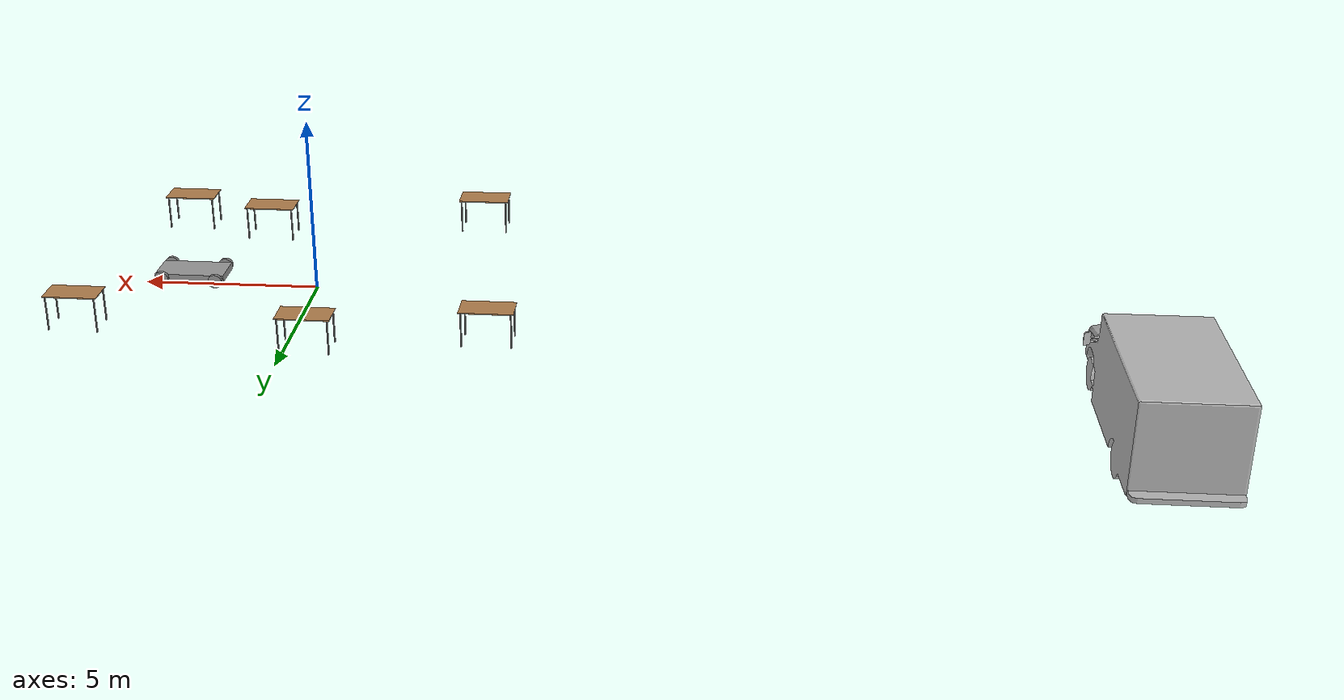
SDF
<?xml version='1.0'?>
<sdf version='1.6'>
  <model name='robot'>
    <link name='link_4'>
      <pose frame=''>3.79287 -0.599271 0.116667 0 -0 0</pose>
      <inertial>
        <mass>1</mass>
        <inertia>
          <ixx>0.166667</ixx>
          <ixy>0</ixy>
          <ixz>0</ixz>
          <iyy>0.166667</iyy>
          <iyz>0</iyz>
          <izz>0.166667</izz>
        </inertia>
        <pose frame=''>0 0 0 0 -0 0</pose>
      </inertial>
      <gravity>1</gravity>
      <self_collide>0</self_collide>
      <kinematic>0</kinematic>
      <visual name='visual'>
        <pose frame=''>0 0 0 0 -0 0</pose>
        <geometry>
          <box>
            <size>2 1 0.2</size>
          </box>
        </geometry>
        <material>
          <lighting>1</lighting>
          <script>
            <uri>file://media/materials/scripts/gazebo.material</uri>
            <name>Gazebo/Grey</name>
          </script>
          <shader type='pixel'>
            <normal_map>__default__</normal_map>
          </shader>
          <ambient>0.3 0.3 0.3 1</ambient>
          <diffuse>0.7 0.7 0.7 1</diffuse>
          <specular>0.01 0.01 0.01 1</specular>
          <emissive>0 0 0 1</emissive>
        </material>
        <transparency>0</transparency>
        <cast_shadows>1</cast_shadows>
      </visual>
      <collision name='collision'>
        <laser_retro>0</laser_retro>
        <max_contacts>10</max_contacts>
        <pose frame=''>0 0 0 0 -0 0</pose>
        <geometry>
          <box>
            <size>2 1 0.2</size>
          </box>
        </geometry>
        <surface>
          <friction>
            <ode>
              <mu>1</mu>
              <mu2>1</mu2>
              <fdir1>0 0 0</fdir1>
              <slip1>0</slip1>
              <slip2>0</slip2>
            </ode>
            <torsional>
              <coefficient>1</coefficient>
              <patch_radius>0</patch_radius>
              <surface_radius>0</surface_radius>
              <use_patch_radius>1</use_patch_radius>
              <ode>
                <slip>0</slip>
              </ode>
            </torsional>
          </friction>
          <bounce>
            <restitution_coefficient>0</restitution_coefficient>
            <threshold>1e+06</threshold>
          </bounce>
          <contact>
            <collide_without_contact>0</collide_without_contact>
            <collide_without_contact_bitmask>1</collide_without_contact_bitmask>
            <collide_bitmask>1</collide_bitmask>
            <ode>
              <soft_cfm>0</soft_cfm>
              <soft_erp>0.2</soft_erp>
              <kp>1e+13</kp>
              <kd>1</kd>
              <max_vel>0.01</max_vel>
              <min_depth>0</min_depth>
            </ode>
            <bullet>
              <split_impulse>1</split_impulse>
              <split_impulse_penetration_threshold>-0.01</split_impulse_penetration_threshold>
              <soft_cfm>0</soft_cfm>
              <soft_erp>0.2</soft_erp>
              <kp>1e+13</kp>
              <kd>1</kd>
            </bullet>
          </contact>
        </surface>
      </collision>
    </link>
    <link name='link_5'>
      <pose frame=''>2.99287 0.040748 0.116667 1.5707 -0 0</pose>
      <inertial>
        <mass>1</mass>
        <inertia>
          <ixx>0.145833</ixx>
          <ixy>0</ixy>
          <ixz>0</ixz>
          <iyy>0.145833</iyy>
          <iyz>0</iyz>
          <izz>0.125</izz>
        </inertia>
        <pose frame=''>0 0 0 0 -0 0</pose>
      </inertial>
      <gravity>1</gravity>
      <self_collide>0</self_collide>
      <kinematic>0</kinematic>
      <visual name='visual'>
        <pose frame=''>0 0 0 0 -0 0</pose>
        <geometry>
          <cylinder>
            <radius>0.2</radius>
            <length>0.1</length>
          </cylinder>
        </geometry>
        <material>
          <lighting>1</lighting>
          <script>
            <uri>file://media/materials/scripts/gazebo.material</uri>
            <name>Gazebo/Grey</name>
          </script>
          <shader type='pixel'>
            <normal_map>__default__</normal_map>
          </shader>
          <ambient>0.3 0.3 0.3 1</ambient>
          <diffuse>0.7 0.7 0.7 1</diffuse>
          <specular>0.01 0.01 0.01 1</specular>
          <emissive>0 0 0 1</emissive>
        </material>
        <transparency>0</transparency>
        <cast_shadows>1</cast_shadows>
      </visual>
      <collision name='collision'>
        <laser_retro>0</laser_retro>
        <max_contacts>10</max_contacts>
        <pose frame=''>0 0 0 0 -0 0</pose>
        <geometry>
          <cylinder>
            <radius>0.2</radius>
            <length>0.1</length>
          </cylinder>
        </geometry>
        <surface>
          <friction>
            <ode>
              <mu>1</mu>
              <mu2>1</mu2>
              <fdir1>0 0 0</fdir1>
              <slip1>0</slip1>
              <slip2>0</slip2>
            </ode>
            <torsional>
              <coefficient>1</coefficient>
              <patch_radius>0</patch_radius>
              <surface_radius>0</surface_radius>
              <use_patch_radius>1</use_patch_radius>
              <ode>
                <slip>0</slip>
              </ode>
            </torsional>
          </friction>
          <bounce>
            <restitution_coefficient>0</restitution_coefficient>
            <threshold>1e+06</threshold>
          </bounce>
          <contact>
            <collide_without_contact>0</collide_without_contact>
            <collide_without_contact_bitmask>1</collide_without_contact_bitmask>
            <collide_bitmask>1</collide_bitmask>
            <ode>
              <soft_cfm>0</soft_cfm>
              <soft_erp>0.2</soft_erp>
              <kp>1e+13</kp>
              <kd>1</kd>
              <max_vel>0.01</max_vel>
              <min_depth>0</min_depth>
            </ode>
            <bullet>
              <split_impulse>1</split_impulse>
              <split_impulse_penetration_threshold>-0.01</split_impulse_penetration_threshold>
              <soft_cfm>0</soft_cfm>
              <soft_erp>0.2</soft_erp>
              <kp>1e+13</kp>
              <kd>1</kd>
            </bullet>
          </contact>
        </surface>
      </collision>
    </link>
    <link name='link_5_clone'>
      <pose frame=''>2.99287 -1.14929 0.116667 1.5707 -0 0</pose>
      <inertial>
        <mass>1</mass>
        <inertia>
          <ixx>0.145833</ixx>
          <ixy>0</ixy>
          <ixz>0</ixz>
          <iyy>0.145833</iyy>
          <iyz>0</iyz>
          <izz>0.125</izz>
        </inertia>
        <pose frame=''>0 0 0 0 -0 0</pose>
      </inertial>
      <self_collide>0</self_collide>
      <kinematic>0</kinematic>
      <gravity>1</gravity>
      <visual name='visual'>
        <pose frame=''>0 0 0 0 -0 0</pose>
        <geometry>
          <cylinder>
            <radius>0.2</radius>
            <length>0.1</length>
          </cylinder>
        </geometry>
        <material>
          <lighting>1</lighting>
          <script>
            <uri>file://media/materials/scripts/gazebo.material</uri>
            <name>Gazebo/Grey</name>
          </script>
          <shader type='pixel'>
            <normal_map>__default__</normal_map>
          </shader>
          <ambient>0.3 0.3 0.3 1</ambient>
          <diffuse>0.7 0.7 0.7 1</diffuse>
          <specular>0.01 0.01 0.01 1</specular>
          <emissive>0 0 0 1</emissive>
        </material>
        <transparency>0</transparency>
        <cast_shadows>1</cast_shadows>
      </visual>
      <collision name='collision'>
        <laser_retro>0</laser_retro>
        <max_contacts>10</max_contacts>
        <pose frame=''>0 0 0 0 -0 0</pose>
        <geometry>
          <cylinder>
            <radius>0.2</radius>
            <length>0.1</length>
          </cylinder>
        </geometry>
        <surface>
          <friction>
            <ode>
              <mu>1</mu>
              <mu2>1</mu2>
              <fdir1>0 0 0</fdir1>
              <slip1>0</slip1>
              <slip2>0</slip2>
            </ode>
            <torsional>
              <coefficient>1</coefficient>
              <patch_radius>0</patch_radius>
              <surface_radius>0</surface_radius>
              <use_patch_radius>1</use_patch_radius>
              <ode>
                <slip>0</slip>
              </ode>
            </torsional>
          </friction>
          <bounce>
            <restitution_coefficient>0</restitution_coefficient>
            <threshold>1e+06</threshold>
          </bounce>
          <contact>
            <collide_without_contact>0</collide_without_contact>
            <collide_without_contact_bitmask>1</collide_without_contact_bitmask>
            <collide_bitmask>1</collide_bitmask>
            <ode>
              <soft_cfm>0</soft_cfm>
              <soft_erp>0.2</soft_erp>
              <kp>1e+13</kp>
              <kd>1</kd>
              <max_vel>0.01</max_vel>
              <min_depth>0</min_depth>
            </ode>
            <bullet>
              <split_impulse>1</split_impulse>
              <split_impulse_penetration_threshold>-0.01</split_impulse_penetration_threshold>
              <soft_cfm>0</soft_cfm>
              <soft_erp>0.2</soft_erp>
              <kp>1e+13</kp>
              <kd>1</kd>
            </bullet>
          </contact>
        </surface>
      </collision>
    </link>
    <link name='link_5_clone_clone'>
      <pose frame=''>4.59287 -0.049252 0.116667 1.5707 -0 0</pose>
      <inertial>
        <mass>1</mass>
        <inertia>
          <ixx>0.145833</ixx>
          <ixy>0</ixy>
          <ixz>0</ixz>
          <iyy>0.145833</iyy>
          <iyz>0</iyz>
          <izz>0.125</izz>
        </inertia>
        <pose frame=''>0 0 0 0 -0 0</pose>
      </inertial>
      <self_collide>0</self_collide>
      <kinematic>0</kinematic>
      <visual name='visual'>
        <pose frame=''>0 0 0 0 -0 0</pose>
        <geometry>
          <cylinder>
            <radius>0.2</radius>
            <length>0.1</length>
          </cylinder>
        </geometry>
        <material>
          <lighting>1</lighting>
          <script>
            <uri>file://media/materials/scripts/gazebo.material</uri>
            <name>Gazebo/Grey</name>
          </script>
          <shader type='pixel'>
            <normal_map>__default__</normal_map>
          </shader>
          <ambient>0.3 0.3 0.3 1</ambient>
          <diffuse>0.7 0.7 0.7 1</diffuse>
          <specular>0.01 0.01 0.01 1</specular>
          <emissive>0 0 0 1</emissive>
        </material>
        <transparency>0</transparency>
        <cast_shadows>1</cast_shadows>
      </visual>
      <collision name='collision'>
        <laser_retro>0</laser_retro>
        <max_contacts>10</max_contacts>
        <pose frame=''>0 0 0 0 -0 0</pose>
        <geometry>
          <cylinder>
            <radius>0.2</radius>
            <length>0.1</length>
          </cylinder>
        </geometry>
        <surface>
          <friction>
            <ode>
              <mu>1</mu>
              <mu2>1</mu2>
              <fdir1>0 0 0</fdir1>
              <slip1>0</slip1>
              <slip2>0</slip2>
            </ode>
            <torsional>
              <coefficient>1</coefficient>
              <patch_radius>0</patch_radius>
              <surface_radius>0</surface_radius>
              <use_patch_radius>1</use_patch_radius>
              <ode>
                <slip>0</slip>
              </ode>
            </torsional>
          </friction>
          <bounce>
            <restitution_coefficient>0</restitution_coefficient>
            <threshold>1e+06</threshold>
          </bounce>
          <contact>
            <collide_without_contact>0</collide_without_contact>
            <collide_without_contact_bitmask>1</collide_without_contact_bitmask>
            <collide_bitmask>1</collide_bitmask>
            <ode>
              <soft_cfm>0</soft_cfm>
              <soft_erp>0.2</soft_erp>
              <kp>1e+13</kp>
              <kd>1</kd>
              <max_vel>0.01</max_vel>
              <min_depth>0</min_depth>
            </ode>
            <bullet>
              <split_impulse>1</split_impulse>
              <split_impulse_penetration_threshold>-0.01</split_impulse_penetration_threshold>
              <soft_cfm>0</soft_cfm>
              <soft_erp>0.2</soft_erp>
              <kp>1e+13</kp>
              <kd>1</kd>
            </bullet>
          </contact>
        </surface>
      </collision>
    </link>
    <link name='link_5_clone_clone_0'>
      <pose frame=''>4.59287 -1.14929 0.116667 1.5707 -0 0</pose>
      <inertial>
        <mass>1</mass>
        <inertia>
          <ixx>0.145833</ixx>
          <ixy>0</ixy>
          <ixz>0</ixz>
          <iyy>0.145833</iyy>
          <iyz>0</iyz>
          <izz>0.125</izz>
        </inertia>
        <pose frame=''>0 0 0 0 -0 0</pose>
      </inertial>
      <self_collide>0</self_collide>
      <kinematic>0</kinematic>
      <visual name='visual'>
        <pose frame=''>0 0 0 0 -0 0</pose>
        <geometry>
          <cylinder>
            <radius>0.2</radius>
            <length>0.1</length>
          </cylinder>
        </geometry>
        <material>
          <lighting>1</lighting>
          <script>
            <uri>file://media/materials/scripts/gazebo.material</uri>
            <name>Gazebo/Grey</name>
          </script>
          <shader type='pixel'>
            <normal_map>__default__</normal_map>
          </shader>
          <ambient>0.3 0.3 0.3 1</ambient>
          <diffuse>0.7 0.7 0.7 1</diffuse>
          <specular>0.01 0.01 0.01 1</specular>
          <emissive>0 0 0 1</emissive>
        </material>
        <transparency>0</transparency>
        <cast_shadows>1</cast_shadows>
      </visual>
      <collision name='collision'>
        <laser_retro>0</laser_retro>
        <max_contacts>10</max_contacts>
        <pose frame=''>0 0 0 0 -0 0</pose>
        <geometry>
          <cylinder>
            <radius>0.2</radius>
            <length>0.1</length>
          </cylinder>
        </geometry>
        <surface>
          <friction>
            <ode>
              <mu>1</mu>
              <mu2>1</mu2>
              <fdir1>0 0 0</fdir1>
              <slip1>0</slip1>
              <slip2>0</slip2>
            </ode>
            <torsional>
              <coefficient>1</coefficient>
              <patch_radius>0</patch_radius>
              <surface_radius>0</surface_radius>
              <use_patch_radius>1</use_patch_radius>
              <ode>
                <slip>0</slip>
              </ode>
            </torsional>
          </friction>
          <bounce>
            <restitution_coefficient>0</restitution_coefficient>
            <threshold>1e+06</threshold>
          </bounce>
          <contact>
            <collide_without_contact>0</collide_without_contact>
            <collide_without_contact_bitmask>1</collide_without_contact_bitmask>
            <collide_bitmask>1</collide_bitmask>
            <ode>
              <soft_cfm>0</soft_cfm>
              <soft_erp>0.2</soft_erp>
              <kp>1e+13</kp>
              <kd>1</kd>
              <max_vel>0.01</max_vel>
              <min_depth>0</min_depth>
            </ode>
            <bullet>
              <split_impulse>1</split_impulse>
              <split_impulse_penetration_threshold>-0.01</split_impulse_penetration_threshold>
              <soft_cfm>0</soft_cfm>
              <soft_erp>0.2</soft_erp>
              <kp>1e+13</kp>
              <kd>1</kd>
            </bullet>
          </contact>
        </surface>
      </collision>
    </link>
    <model name='ambulance'>
      <static>1</static>
      <link name='link'>
        <collision name='collision'>
          <geometry>
            <mesh>
              <scale>0.0254 0.0254 0.0254</scale>
              <uri>model://ambulance/meshes/ambulance.obj</uri>
            </mesh>
          </geometry>
        </collision>
        <visual name='visual'>
          <geometry>
            <mesh>
              <scale>0.0254 0.0254 0.0254</scale>
              <uri>model://ambulance/meshes/ambulance.obj</uri>
            </mesh>
          </geometry>
        </visual>
      </link>
      <pose frame=''>-22.183 7.23448 -0.083333 0 -0 0</pose>
    </model>
    <model name='table'>
      <static>1</static>
      <link name='link'>
        <collision name='surface'>
          <pose frame=''>0 0 1 0 -0 0</pose>
          <geometry>
            <box>
              <size>1.5 0.8 0.03</size>
            </box>
          </geometry>
          <surface>
            <friction>
              <ode>
                <mu>0.6</mu>
                <mu2>0.6</mu2>
              </ode>
            </friction>
          </surface>
        </collision>
        <visual name='visual1'>
          <pose frame=''>0 0 1 0 -0 0</pose>
          <geometry>
            <box>
              <size>1.5 0.8 0.03</size>
            </box>
          </geometry>
          <material>
            <script>
              <uri>file://media/materials/scripts/gazebo.material</uri>
              <name>Gazebo/Wood</name>
            </script>
          </material>
        </visual>
        <collision name='front_left_leg'>
          <pose frame=''>0.68 0.38 0.5 0 -0 0</pose>
          <geometry>
            <cylinder>
              <radius>0.02</radius>
              <length>1</length>
            </cylinder>
          </geometry>
        </collision>
        <visual name='front_left_leg'>
          <pose frame=''>0.68 0.38 0.5 0 -0 0</pose>
          <geometry>
            <cylinder>
              <radius>0.02</radius>
              <length>1</length>
            </cylinder>
          </geometry>
          <material>
            <script>
              <uri>file://media/materials/scripts/gazebo.material</uri>
              <name>Gazebo/Grey</name>
            </script>
          </material>
        </visual>
        <collision name='front_right_leg'>
          <pose frame=''>0.68 -0.38 0.5 0 -0 0</pose>
          <geometry>
            <cylinder>
              <radius>0.02</radius>
              <length>1</length>
            </cylinder>
          </geometry>
        </collision>
        <visual name='front_right_leg'>
          <pose frame=''>0.68 -0.38 0.5 0 -0 0</pose>
          <geometry>
            <cylinder>
              <radius>0.02</radius>
              <length>1</length>
            </cylinder>
          </geometry>
          <material>
            <script>
              <uri>file://media/materials/scripts/gazebo.material</uri>
              <name>Gazebo/Grey</name>
            </script>
          </material>
        </visual>
        <collision name='back_right_leg'>
          <pose frame=''>-0.68 -0.38 0.5 0 -0 0</pose>
          <geometry>
            <cylinder>
              <radius>0.02</radius>
              <length>1</length>
            </cylinder>
          </geometry>
        </collision>
        <visual name='back_right_leg'>
          <pose frame=''>-0.68 -0.38 0.5 0 -0 0</pose>
          <geometry>
            <cylinder>
              <radius>0.02</radius>
              <length>1</length>
            </cylinder>
          </geometry>
          <material>
            <script>
              <uri>file://media/materials/scripts/gazebo.material</uri>
              <name>Gazebo/Grey</name>
            </script>
          </material>
        </visual>
        <collision name='back_left_leg'>
          <pose frame=''>-0.68 0.38 0.5 0 -0 0</pose>
          <geometry>
            <cylinder>
              <radius>0.02</radius>
              <length>1</length>
            </cylinder>
          </geometry>
        </collision>
        <visual name='back_left_leg'>
          <pose frame=''>-0.68 0.38 0.5 0 -0 0</pose>
          <geometry>
            <cylinder>
              <radius>0.02</radius>
              <length>1</length>
            </cylinder>
          </geometry>
          <material>
            <script>
              <uri>file://media/materials/scripts/gazebo.material</uri>
              <name>Gazebo/Grey</name>
            </script>
          </material>
        </visual>
      </link>
      <pose frame=''>-4.1661 -5.10961 -0.083333 0 -0 0</pose>
    </model>
    <model name='table_clone'>
      <static>1</static>
      <link name='link'>
        <collision name='surface'>
          <pose frame=''>0 0 1 0 -0 0</pose>
          <geometry>
            <box>
              <size>1.5 0.8 0.03</size>
            </box>
          </geometry>
          <surface>
            <friction>
              <ode>
                <mu>0.6</mu>
                <mu2>0.6</mu2>
              </ode>
            </friction>
          </surface>
        </collision>
        <visual name='visual1'>
          <pose frame=''>0 0 1 0 -0 0</pose>
          <geometry>
            <box>
              <size>1.5 0.8 0.03</size>
            </box>
          </geometry>
          <material>
            <script>
              <uri>file://media/materials/scripts/gazebo.material</uri>
              <name>Gazebo/Wood</name>
            </script>
          </material>
        </visual>
        <collision name='front_left_leg'>
          <pose frame=''>0.68 0.38 0.5 0 -0 0</pose>
          <geometry>
            <cylinder>
              <radius>0.02</radius>
              <length>1</length>
            </cylinder>
          </geometry>
        </collision>
        <visual name='front_left_leg'>
          <pose frame=''>0.68 0.38 0.5 0 -0 0</pose>
          <geometry>
            <cylinder>
              <radius>0.02</radius>
              <length>1</length>
            </cylinder>
          </geometry>
          <material>
            <script>
              <uri>file://media/materials/scripts/gazebo.material</uri>
              <name>Gazebo/Grey</name>
            </script>
          </material>
        </visual>
        <collision name='front_right_leg'>
          <pose frame=''>0.68 -0.38 0.5 0 -0 0</pose>
          <geometry>
            <cylinder>
              <radius>0.02</radius>
              <length>1</length>
            </cylinder>
          </geometry>
        </collision>
        <visual name='front_right_leg'>
          <pose frame=''>0.68 -0.38 0.5 0 -0 0</pose>
          <geometry>
            <cylinder>
              <radius>0.02</radius>
              <length>1</length>
            </cylinder>
          </geometry>
          <material>
            <script>
              <uri>file://media/materials/scripts/gazebo.material</uri>
              <name>Gazebo/Grey</name>
            </script>
          </material>
        </visual>
        <collision name='back_right_leg'>
          <pose frame=''>-0.68 -0.38 0.5 0 -0 0</pose>
          <geometry>
            <cylinder>
              <radius>0.02</radius>
              <length>1</length>
            </cylinder>
          </geometry>
        </collision>
        <visual name='back_right_leg'>
          <pose frame=''>-0.68 -0.38 0.5 0 -0 0</pose>
          <geometry>
            <cylinder>
              <radius>0.02</radius>
              <length>1</length>
            </cylinder>
          </geometry>
          <material>
            <script>
              <uri>file://media/materials/scripts/gazebo.material</uri>
              <name>Gazebo/Grey</name>
            </script>
          </material>
        </visual>
        <collision name='back_left_leg'>
          <pose frame=''>-0.68 0.38 0.5 0 -0 0</pose>
          <geometry>
            <cylinder>
              <radius>0.02</radius>
              <length>1</length>
            </cylinder>
          </geometry>
        </collision>
        <visual name='back_left_leg'>
          <pose frame=''>-0.68 0.38 0.5 0 -0 0</pose>
          <geometry>
            <cylinder>
              <radius>0.02</radius>
              <length>1</length>
            </cylinder>
          </geometry>
          <material>
            <script>
              <uri>file://media/materials/scripts/gazebo.material</uri>
              <name>Gazebo/Grey</name>
            </script>
          </material>
        </visual>
      </link>
      <pose frame=''>2.27044 -3.99822 -0.083333 0 -0 0</pose>
    </model>
    <model name='table_clone_0'>
      <static>1</static>
      <link name='link'>
        <collision name='surface'>
          <pose frame=''>0 0 1 0 -0 0</pose>
          <geometry>
            <box>
              <size>1.5 0.8 0.03</size>
            </box>
          </geometry>
          <surface>
            <friction>
              <ode>
                <mu>0.6</mu>
                <mu2>0.6</mu2>
              </ode>
            </friction>
          </surface>
        </collision>
        <visual name='visual1'>
          <pose frame=''>0 0 1 0 -0 0</pose>
          <geometry>
            <box>
              <size>1.5 0.8 0.03</size>
            </box>
          </geometry>
          <material>
            <script>
              <uri>file://media/materials/scripts/gazebo.material</uri>
              <name>Gazebo/Wood</name>
            </script>
          </material>
        </visual>
        <collision name='front_left_leg'>
          <pose frame=''>0.68 0.38 0.5 0 -0 0</pose>
          <geometry>
            <cylinder>
              <radius>0.02</radius>
              <length>1</length>
            </cylinder>
          </geometry>
        </collision>
        <visual name='front_left_leg'>
          <pose frame=''>0.68 0.38 0.5 0 -0 0</pose>
          <geometry>
            <cylinder>
              <radius>0.02</radius>
              <length>1</length>
            </cylinder>
          </geometry>
          <material>
            <script>
              <uri>file://media/materials/scripts/gazebo.material</uri>
              <name>Gazebo/Grey</name>
            </script>
          </material>
        </visual>
        <collision name='front_right_leg'>
          <pose frame=''>0.68 -0.38 0.5 0 -0 0</pose>
          <geometry>
            <cylinder>
              <radius>0.02</radius>
              <length>1</length>
            </cylinder>
          </geometry>
        </collision>
        <visual name='front_right_leg'>
          <pose frame=''>0.68 -0.38 0.5 0 -0 0</pose>
          <geometry>
            <cylinder>
              <radius>0.02</radius>
              <length>1</length>
            </cylinder>
          </geometry>
          <material>
            <script>
              <uri>file://media/materials/scripts/gazebo.material</uri>
              <name>Gazebo/Grey</name>
            </script>
          </material>
        </visual>
        <collision name='back_right_leg'>
          <pose frame=''>-0.68 -0.38 0.5 0 -0 0</pose>
          <geometry>
            <cylinder>
              <radius>0.02</radius>
              <length>1</length>
            </cylinder>
          </geometry>
        </collision>
        <visual name='back_right_leg'>
          <pose frame=''>-0.68 -0.38 0.5 0 -0 0</pose>
          <geometry>
            <cylinder>
              <radius>0.02</radius>
              <length>1</length>
            </cylinder>
          </geometry>
          <material>
            <script>
              <uri>file://media/materials/scripts/gazebo.material</uri>
              <name>Gazebo/Grey</name>
            </script>
          </material>
        </visual>
        <collision name='back_left_leg'>
          <pose frame=''>-0.68 0.38 0.5 0 -0 0</pose>
          <geometry>
            <cylinder>
              <radius>0.02</radius>
              <length>1</length>
            </cylinder>
          </geometry>
        </collision>
        <visual name='back_left_leg'>
          <pose frame=''>-0.68 0.38 0.5 0 -0 0</pose>
          <geometry>
            <cylinder>
              <radius>0.02</radius>
              <length>1</length>
            </cylinder>
          </geometry>
          <material>
            <script>
              <uri>file://media/materials/scripts/gazebo.material</uri>
              <name>Gazebo/Grey</name>
            </script>
          </material>
        </visual>
      </link>
      <pose frame=''>-5.35241 2.94202 -0.083333 0 -0 0</pose>
    </model>
    <model name='table_clone_1'>
      <static>1</static>
      <link name='link'>
        <collision name='surface'>
          <pose frame=''>0 0 1 0 -0 0</pose>
          <geometry>
            <box>
              <size>1.5 0.8 0.03</size>
            </box>
          </geometry>
          <surface>
            <friction>
              <ode>
                <mu>0.6</mu>
                <mu2>0.6</mu2>
              </ode>
            </friction>
          </surface>
        </collision>
        <visual name='visual1'>
          <pose frame=''>0 0 1 0 -0 0</pose>
          <geometry>
            <box>
              <size>1.5 0.8 0.03</size>
            </box>
          </geometry>
          <material>
            <script>
              <uri>file://media/materials/scripts/gazebo.material</uri>
              <name>Gazebo/Wood</name>
            </script>
          </material>
        </visual>
        <collision name='front_left_leg'>
          <pose frame=''>0.68 0.38 0.5 0 -0 0</pose>
          <geometry>
            <cylinder>
              <radius>0.02</radius>
              <length>1</length>
            </cylinder>
          </geometry>
        </collision>
        <visual name='front_left_leg'>
          <pose frame=''>0.68 0.38 0.5 0 -0 0</pose>
          <geometry>
            <cylinder>
              <radius>0.02</radius>
              <length>1</length>
            </cylinder>
          </geometry>
          <material>
            <script>
              <uri>file://media/materials/scripts/gazebo.material</uri>
              <name>Gazebo/Grey</name>
            </script>
          </material>
        </visual>
        <collision name='front_right_leg'>
          <pose frame=''>0.68 -0.38 0.5 0 -0 0</pose>
          <geometry>
            <cylinder>
              <radius>0.02</radius>
              <length>1</length>
            </cylinder>
          </geometry>
        </collision>
        <visual name='front_right_leg'>
          <pose frame=''>0.68 -0.38 0.5 0 -0 0</pose>
          <geometry>
            <cylinder>
              <radius>0.02</radius>
              <length>1</length>
            </cylinder>
          </geometry>
          <material>
            <script>
              <uri>file://media/materials/scripts/gazebo.material</uri>
              <name>Gazebo/Grey</name>
            </script>
          </material>
        </visual>
        <collision name='back_right_leg'>
          <pose frame=''>-0.68 -0.38 0.5 0 -0 0</pose>
          <geometry>
            <cylinder>
              <radius>0.02</radius>
              <length>1</length>
            </cylinder>
          </geometry>
        </collision>
        <visual name='back_right_leg'>
          <pose frame=''>-0.68 -0.38 0.5 0 -0 0</pose>
          <geometry>
            <cylinder>
              <radius>0.02</radius>
              <length>1</length>
            </cylinder>
          </geometry>
          <material>
            <script>
              <uri>file://media/materials/scripts/gazebo.material</uri>
              <name>Gazebo/Grey</name>
            </script>
          </material>
        </visual>
        <collision name='back_left_leg'>
          <pose frame=''>-0.68 0.38 0.5 0 -0 0</pose>
          <geometry>
            <cylinder>
              <radius>0.02</radius>
              <length>1</length>
            </cylinder>
          </geometry>
        </collision>
        <visual name='back_left_leg'>
          <pose frame=''>-0.68 0.38 0.5 0 -0 0</pose>
          <geometry>
            <cylinder>
              <radius>0.02</radius>
              <length>1</length>
            </cylinder>
          </geometry>
          <material>
            <script>
              <uri>file://media/materials/scripts/gazebo.material</uri>
              <name>Gazebo/Grey</name>
            </script>
          </material>
        </visual>
      </link>
      <pose frame=''>-0.541565 3.70122 -0.083333 0 -0 0</pose>
    </model>
    <model name='table_clone_2'>
      <static>1</static>
      <link name='link'>
        <collision name='surface'>
          <pose frame=''>0 0 1 0 -0 0</pose>
          <geometry>
            <box>
              <size>1.5 0.8 0.03</size>
            </box>
          </geometry>
          <surface>
            <friction>
              <ode>
                <mu>0.6</mu>
                <mu2>0.6</mu2>
              </ode>
            </friction>
          </surface>
        </collision>
        <visual name='visual1'>
          <pose frame=''>0 0 1 0 -0 0</pose>
          <geometry>
            <box>
              <size>1.5 0.8 0.03</size>
            </box>
          </geometry>
          <material>
            <script>
              <uri>file://media/materials/scripts/gazebo.material</uri>
              <name>Gazebo/Wood</name>
            </script>
          </material>
        </visual>
        <collision name='front_left_leg'>
          <pose frame=''>0.68 0.38 0.5 0 -0 0</pose>
          <geometry>
            <cylinder>
              <radius>0.02</radius>
              <length>1</length>
            </cylinder>
          </geometry>
        </collision>
        <visual name='front_left_leg'>
          <pose frame=''>0.68 0.38 0.5 0 -0 0</pose>
          <geometry>
            <cylinder>
              <radius>0.02</radius>
              <length>1</length>
            </cylinder>
          </geometry>
          <material>
            <script>
              <uri>file://media/materials/scripts/gazebo.material</uri>
              <name>Gazebo/Grey</name>
            </script>
          </material>
        </visual>
        <collision name='front_right_leg'>
          <pose frame=''>0.68 -0.38 0.5 0 -0 0</pose>
          <geometry>
            <cylinder>
              <radius>0.02</radius>
              <length>1</length>
            </cylinder>
          </geometry>
        </collision>
        <visual name='front_right_leg'>
          <pose frame=''>0.68 -0.38 0.5 0 -0 0</pose>
          <geometry>
            <cylinder>
              <radius>0.02</radius>
              <length>1</length>
            </cylinder>
          </geometry>
          <material>
            <script>
              <uri>file://media/materials/scripts/gazebo.material</uri>
              <name>Gazebo/Grey</name>
            </script>
          </material>
        </visual>
        <collision name='back_right_leg'>
          <pose frame=''>-0.68 -0.38 0.5 0 -0 0</pose>
          <geometry>
            <cylinder>
              <radius>0.02</radius>
              <length>1</length>
            </cylinder>
          </geometry>
        </collision>
        <visual name='back_right_leg'>
          <pose frame=''>-0.68 -0.38 0.5 0 -0 0</pose>
          <geometry>
            <cylinder>
              <radius>0.02</radius>
              <length>1</length>
            </cylinder>
          </geometry>
          <material>
            <script>
              <uri>file://media/materials/scripts/gazebo.material</uri>
              <name>Gazebo/Grey</name>
            </script>
          </material>
        </visual>
        <collision name='back_left_leg'>
          <pose frame=''>-0.68 0.38 0.5 0 -0 0</pose>
          <geometry>
            <cylinder>
              <radius>0.02</radius>
              <length>1</length>
            </cylinder>
          </geometry>
        </collision>
        <visual name='back_left_leg'>
          <pose frame=''>-0.68 0.38 0.5 0 -0 0</pose>
          <geometry>
            <cylinder>
              <radius>0.02</radius>
              <length>1</length>
            </cylinder>
          </geometry>
          <material>
            <script>
              <uri>file://media/materials/scripts/gazebo.material</uri>
              <name>Gazebo/Grey</name>
            </script>
          </material>
        </visual>
      </link>
      <pose frame=''>6.08508 2.82677 -0.083333 0 -0 0</pose>
    </model>
    <model name='table_clone_3'>
      <static>1</static>
      <link name='link'>
        <collision name='surface'>
          <pose frame=''>0 0 1 0 -0 0</pose>
          <geometry>
            <box>
              <size>1.5 0.8 0.03</size>
            </box>
          </geometry>
          <surface>
            <friction>
              <ode>
                <mu>0.6</mu>
                <mu2>0.6</mu2>
              </ode>
            </friction>
          </surface>
        </collision>
        <visual name='visual1'>
          <pose frame=''>0 0 1 0 -0 0</pose>
          <geometry>
            <box>
              <size>1.5 0.8 0.03</size>
            </box>
          </geometry>
          <material>
            <script>
              <uri>file://media/materials/scripts/gazebo.material</uri>
              <name>Gazebo/Wood</name>
            </script>
          </material>
        </visual>
        <collision name='front_left_leg'>
          <pose frame=''>0.68 0.38 0.5 0 -0 0</pose>
          <geometry>
            <cylinder>
              <radius>0.02</radius>
              <length>1</length>
            </cylinder>
          </geometry>
        </collision>
        <visual name='front_left_leg'>
          <pose frame=''>0.68 0.38 0.5 0 -0 0</pose>
          <geometry>
            <cylinder>
              <radius>0.02</radius>
              <length>1</length>
            </cylinder>
          </geometry>
          <material>
            <script>
              <uri>file://media/materials/scripts/gazebo.material</uri>
              <name>Gazebo/Grey</name>
            </script>
          </material>
        </visual>
        <collision name='front_right_leg'>
          <pose frame=''>0.68 -0.38 0.5 0 -0 0</pose>
          <geometry>
            <cylinder>
              <radius>0.02</radius>
              <length>1</length>
            </cylinder>
          </geometry>
        </collision>
        <visual name='front_right_leg'>
          <pose frame=''>0.68 -0.38 0.5 0 -0 0</pose>
          <geometry>
            <cylinder>
              <radius>0.02</radius>
              <length>1</length>
            </cylinder>
          </geometry>
          <material>
            <script>
              <uri>file://media/materials/scripts/gazebo.material</uri>
              <name>Gazebo/Grey</name>
            </script>
          </material>
        </visual>
        <collision name='back_right_leg'>
          <pose frame=''>-0.68 -0.38 0.5 0 -0 0</pose>
          <geometry>
            <cylinder>
              <radius>0.02</radius>
              <length>1</length>
            </cylinder>
          </geometry>
        </collision>
        <visual name='back_right_leg'>
          <pose frame=''>-0.68 -0.38 0.5 0 -0 0</pose>
          <geometry>
            <cylinder>
              <radius>0.02</radius>
              <length>1</length>
            </cylinder>
          </geometry>
          <material>
            <script>
              <uri>file://media/materials/scripts/gazebo.material</uri>
              <name>Gazebo/Grey</name>
            </script>
          </material>
        </visual>
        <collision name='back_left_leg'>
          <pose frame=''>-0.68 0.38 0.5 0 -0 0</pose>
          <geometry>
            <cylinder>
              <radius>0.02</radius>
              <length>1</length>
            </cylinder>
          </geometry>
        </collision>
        <visual name='back_left_leg'>
          <pose frame=''>-0.68 0.38 0.5 0 -0 0</pose>
          <geometry>
            <cylinder>
              <radius>0.02</radius>
              <length>1</length>
            </cylinder>
          </geometry>
          <material>
            <script>
              <uri>file://media/materials/scripts/gazebo.material</uri>
              <name>Gazebo/Grey</name>
            </script>
          </material>
        </visual>
      </link>
      <pose frame=''>4.92321 -4.69032 -0.083333 0 -0 0</pose>
    </model>
    <joint name='link_4_JOINT_10' type='revolute'>
      <parent>link_4</parent>
      <child>link_5_clone_clone</child>
      <pose frame=''>0 0 0 0 -0 0</pose>
      <axis>
        <xyz>0 0 1</xyz>
        <use_parent_model_frame>0</use_parent_model_frame>
        <limit>
          <lower>-1.79769e+308</lower>
          <upper>1.79769e+308</upper>
          <effort>-1</effort>
          <velocity>-1</velocity>
        </limit>
        <dynamics>
          <spring_reference>0</spring_reference>
          <spring_stiffness>0</spring_stiffness>
          <damping>0</damping>
        </dynamics>
      </axis>
      <physics>
        <ode>
          <limit>
            <cfm>0</cfm>
            <erp>0.2</erp>
          </limit>
          <suspension>
            <cfm>0</cfm>
            <erp>0.2</erp>
          </suspension>
        </ode>
      </physics>
    </joint>
    <joint name='link_4_JOINT_5' type='revolute'>
      <parent>link_4</parent>
      <child>link_5</child>
      <pose frame=''>0 0 0 0 -0 0</pose>
      <axis>
        <xyz>0 0 1</xyz>
        <use_parent_model_frame>0</use_parent_model_frame>
        <limit>
          <lower>-1.79769e+308</lower>
          <upper>1.79769e+308</upper>
          <effort>-1</effort>
          <velocity>-1</velocity>
        </limit>
        <dynamics>
          <spring_reference>0</spring_reference>
          <spring_stiffness>0</spring_stiffness>
          <damping>0</damping>
        </dynamics>
      </axis>
      <physics>
        <ode>
          <limit>
            <cfm>0</cfm>
            <erp>0.2</erp>
          </limit>
          <suspension>
            <cfm>0</cfm>
            <erp>0.2</erp>
          </suspension>
        </ode>
      </physics>
    </joint>
    <joint name='link_4_JOINT_6' type='revolute'>
      <parent>link_4</parent>
      <child>link_5_clone_clone</child>
      <pose frame=''>0 0 0 0 -0 0</pose>
      <axis>
        <xyz>0 0 1</xyz>
        <use_parent_model_frame>0</use_parent_model_frame>
        <limit>
          <lower>-1.79769e+308</lower>
          <upper>1.79769e+308</upper>
          <effort>-1</effort>
          <velocity>-1</velocity>
        </limit>
        <dynamics>
          <spring_reference>0</spring_reference>
          <spring_stiffness>0</spring_stiffness>
          <damping>0</damping>
        </dynamics>
      </axis>
      <physics>
        <ode>
          <limit>
            <cfm>0</cfm>
            <erp>0.2</erp>
          </limit>
          <suspension>
            <cfm>0</cfm>
            <erp>0.2</erp>
          </suspension>
        </ode>
      </physics>
    </joint>
    <joint name='link_4_JOINT_7' type='revolute'>
      <parent>link_4</parent>
      <child>link_5_clone</child>
      <pose frame=''>0 0 0 0 -0 0</pose>
      <axis>
        <xyz>0 0 1</xyz>
        <use_parent_model_frame>0</use_parent_model_frame>
        <limit>
          <lower>-1.79769e+308</lower>
          <upper>1.79769e+308</upper>
          <effort>-1</effort>
          <velocity>-1</velocity>
        </limit>
        <dynamics>
          <spring_reference>0</spring_reference>
          <spring_stiffness>0</spring_stiffness>
          <damping>0</damping>
        </dynamics>
      </axis>
      <physics>
        <ode>
          <limit>
            <cfm>0</cfm>
            <erp>0.2</erp>
          </limit>
          <suspension>
            <cfm>0</cfm>
            <erp>0.2</erp>
          </suspension>
        </ode>
      </physics>
    </joint>
    <joint name='link_4_JOINT_8' type='revolute'>
      <parent>link_4</parent>
      <child>link_5_clone_clone_0</child>
      <pose frame=''>0 0 0 0 -0 0</pose>
      <axis>
        <xyz>0 0 1</xyz>
        <use_parent_model_frame>0</use_parent_model_frame>
        <limit>
          <lower>-1.79769e+308</lower>
          <upper>1.79769e+308</upper>
          <effort>-1</effort>
          <velocity>-1</velocity>
        </limit>
        <dynamics>
          <spring_reference>0</spring_reference>
          <spring_stiffness>0</spring_stiffness>
          <damping>0</damping>
        </dynamics>
      </axis>
      <physics>
        <ode>
          <limit>
            <cfm>0</cfm>
            <erp>0.2</erp>
          </limit>
          <suspension>
            <cfm>0</cfm>
            <erp>0.2</erp>
          </suspension>
        </ode>
      </physics>
    </joint>
    <joint name='link_4_JOINT_9' type='revolute'>
      <parent>link_4</parent>
      <child>link_5</child>
      <pose frame=''>0 0 0 0 -0 0</pose>
      <axis>
        <xyz>0 0 1</xyz>
        <use_parent_model_frame>0</use_parent_model_frame>
        <limit>
          <lower>-1.79769e+308</lower>
          <upper>1.79769e+308</upper>
          <effort>-1</effort>
          <velocity>-1</velocity>
        </limit>
        <dynamics>
          <spring_reference>0</spring_reference>
          <spring_stiffness>0</spring_stiffness>
          <damping>0</damping>
        </dynamics>
      </axis>
      <physics>
        <ode>
          <limit>
            <cfm>0</cfm>
            <erp>0.2</erp>
          </limit>
          <suspension>
            <cfm>0</cfm>
            <erp>0.2</erp>
          </suspension>
        </ode>
      </physics>
    </joint>
    <joint name='link_5_clone_JOINT_3' type='revolute'>
      <parent>link_5_clone</parent>
      <child>link_4</child>
      <pose frame=''>0 0 0 0 -0 0</pose>
      <axis>
        <xyz>0 0 1</xyz>
        <use_parent_model_frame>0</use_parent_model_frame>
        <limit>
          <lower>-1.79769e+308</lower>
          <upper>1.79769e+308</upper>
          <effort>-1</effort>
          <velocity>-1</velocity>
        </limit>
        <dynamics>
          <spring_reference>0</spring_reference>
          <spring_stiffness>0</spring_stiffness>
          <damping>0</damping>
        </dynamics>
      </axis>
      <physics>
        <ode>
          <limit>
            <cfm>0</cfm>
            <erp>0.2</erp>
          </limit>
          <suspension>
            <cfm>0</cfm>
            <erp>0.2</erp>
          </suspension>
        </ode>
      </physics>
    </joint>
    <static>0</static>
    <allow_auto_disable>1</allow_auto_disable>
  </model>
</sdf>
